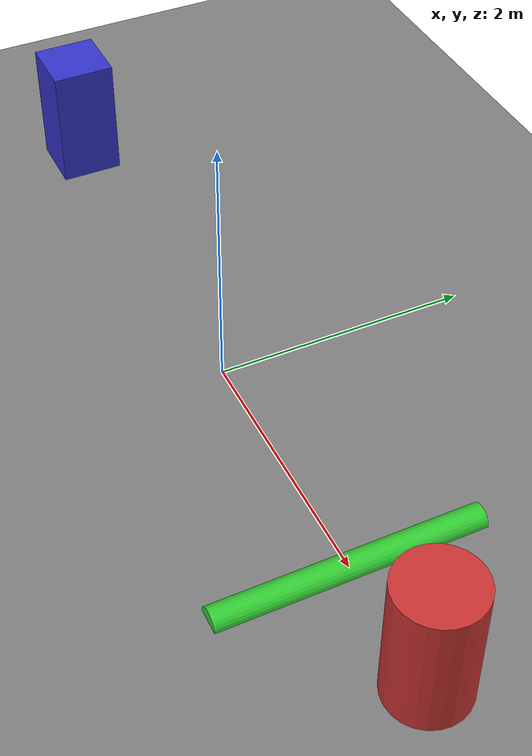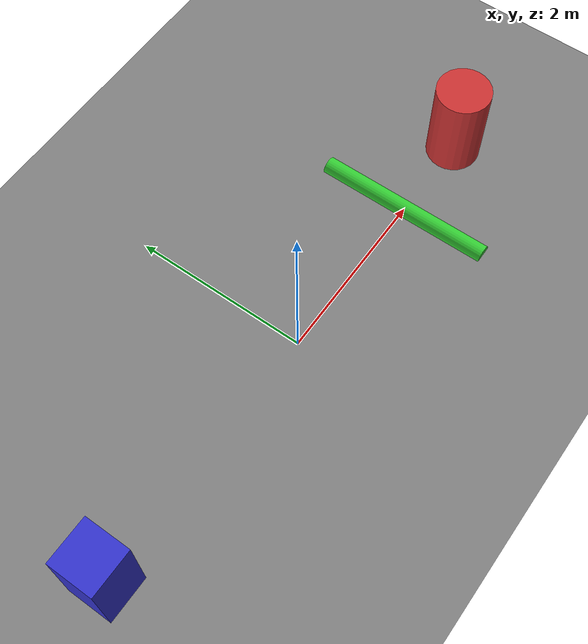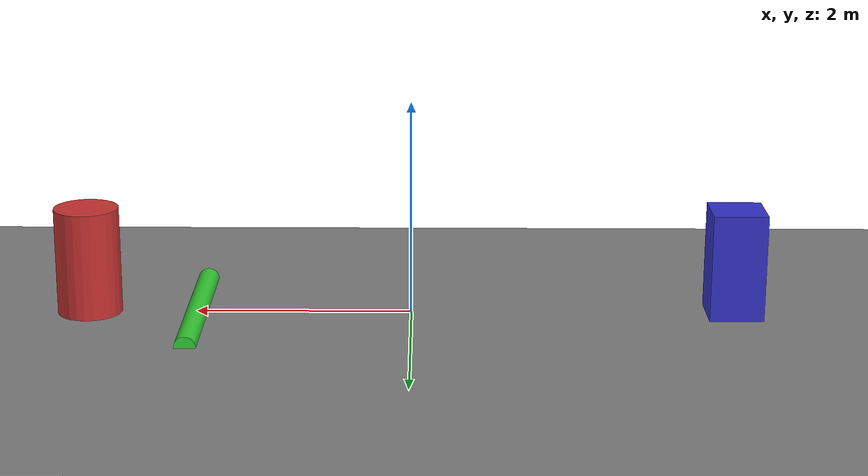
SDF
<?xml version="1.0" ?>
<!--
  Gazebo Harmonic compatible empty world for RobuROC simulation
-->
<sdf version='1.9'>
  <world name='empty_world'>

    <!-- Physics configuration -->
    <physics name='default_physics' type='dart'>
      <max_step_size>0.001</max_step_size>
      <real_time_factor>1</real_time_factor>
      <real_time_update_rate>1000</real_time_update_rate>
    </physics>

    <!-- Required plugins for Gazebo Harmonic -->
    <plugin filename="gz-sim-physics-system" name="gz::sim::systems::Physics"/>
    <plugin filename="gz-sim-user-commands-system" name="gz::sim::systems::UserCommands"/>
    <plugin filename="gz-sim-scene-broadcaster-system" name="gz::sim::systems::SceneBroadcaster"/>
    <plugin filename="gz-sim-contact-system" name="gz::sim::systems::Contact"/>
    <plugin filename="gz-sim-sensors-system" name="gz::sim::systems::Sensors">
      <render_engine>ogre2</render_engine>
    </plugin>

    <!-- Sunlight -->
    <light name='sun' type='directional'>
      <cast_shadows>true</cast_shadows>
      <pose>0 0 10 0 0 0</pose>
      <diffuse>0.8 0.8 0.8 1</diffuse>
      <specular>0.2 0.2 0.2 1</specular>
      <attenuation>
        <range>1000</range>
        <constant>0.9</constant>
        <linear>0.01</linear>
        <quadratic>0.001</quadratic>
      </attenuation>
      <direction>-0.5 0.1 -0.9</direction>
    </light>

    <!-- Ground plane -->
    <model name='ground_plane'>
      <static>true</static>
      <link name='link'>
        <collision name='collision'>
          <geometry>
            <plane>
              <normal>0 0 1</normal>
              <size>100 100</size>
            </plane>
          </geometry>
          <surface>
            <friction>
              <ode>
                <mu>100</mu>
                <mu2>50</mu2>
              </ode>
            </friction>
          </surface>
        </collision>
        <visual name='visual'>
          <cast_shadows>false</cast_shadows>
          <geometry>
            <plane>
              <normal>0 0 1</normal>
              <size>100 100</size>
            </plane>
          </geometry>
          <material>
            <ambient>0.5 0.5 0.5 1</ambient>
            <diffuse>0.5 0.5 0.5 1</diffuse>
            <specular>0.1 0.1 0.1 1</specular>
          </material>
        </visual>
      </link>
    </model>

    <!-- World settings -->
    <gravity>0 0 -9.8</gravity>
    <magnetic_field>6e-06 2.3e-05 -4.2e-05</magnetic_field>
    <atmosphere type='adiabatic'/>

    <!-- Scene settings -->
    <scene>
      <ambient>0.4 0.4 0.4 1</ambient>
      <background>0.7 0.7 0.7 1</background>
      <shadows>true</shadows>
    </scene>

    <!-- Cylinder obstacle 3m in front of robot (positive X) -->
    <model name='cylinder_obstacle'>
      <static>true</static>
      <pose>3 0 0.5 0 0 0</pose>
      <link name='link'>
        <collision name='collision'>
          <geometry>
            <cylinder>
              <radius>0.3</radius>
              <length>1.0</length>
            </cylinder>
          </geometry>
        </collision>
        <visual name='visual'>
          <geometry>
            <cylinder>
              <radius>0.3</radius>
              <length>1.0</length>
            </cylinder>
          </geometry>
          <material>
            <ambient>0.8 0.2 0.2 1</ambient>
            <diffuse>0.8 0.2 0.2 1</diffuse>
            <specular>0.1 0.1 0.1 1</specular>
          </material>
        </visual>
      </link>
    </model>

    <!-- Box obstacle 3m behind robot (negative X) -->
    <model name='box_obstacle'>
      <static>true</static>
      <pose>-3 0 0.5 0 0 0</pose>
      <link name='link'>
        <collision name='collision'>
          <geometry>
            <box>
              <size>0.5 0.5 1.0</size>
            </box>
          </geometry>
        </collision>
        <visual name='visual'>
          <geometry>
            <box>
              <size>0.5 0.5 1.0</size>
            </box>
          </geometry>
          <material>
            <ambient>0.2 0.2 0.8 1</ambient>
            <diffuse>0.2 0.2 0.8 1</diffuse>
            <specular>0.1 0.1 0.1 1</specular>
          </material>
        </visual>
      </link>
    </model>

    <!-- Add cylinder obstacle lying on the ground 2m in front of the robot partially into the ground to have the robot drive over -->
    <!-- Rotate the cylinder to lie on its side -->
    <model name='ground_cylinder_obstacle'>
      <static>true</static>
      <pose>2 0 0 1.5708 0 0</pose>
      <link name='link'>
        <collision name='collision'>
          <geometry>
            <cylinder>
              <radius>0.1</radius>
              <length>2.0</length>
            </cylinder>
          </geometry>
        </collision>
        <visual name='visual'>
          <geometry>
            <cylinder>
              <radius>0.1</radius>
              <length>2.0</length>
            </cylinder>
          </geometry>
          <material>
            <ambient>0.2 0.8 0.2 1</ambient>
            <diffuse>0.2 0.8 0.2 1</diffuse>
            <specular>0.1 0.1 0.1 1</specular>
          </material>
        </visual>
      </link>
    </model>

  </world>
</sdf>
